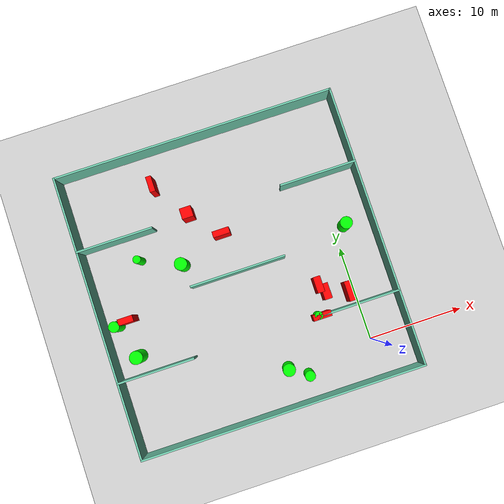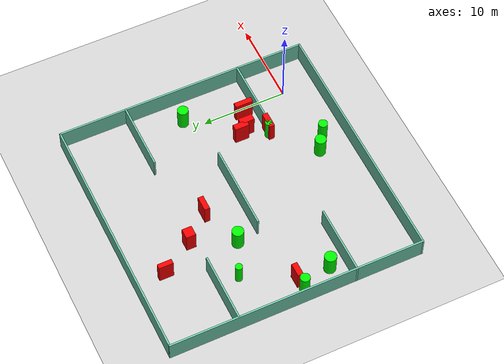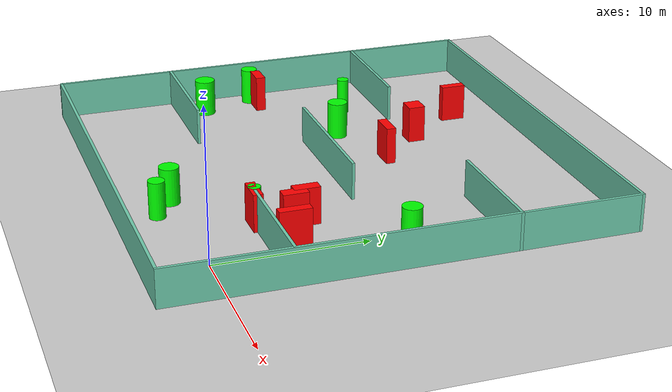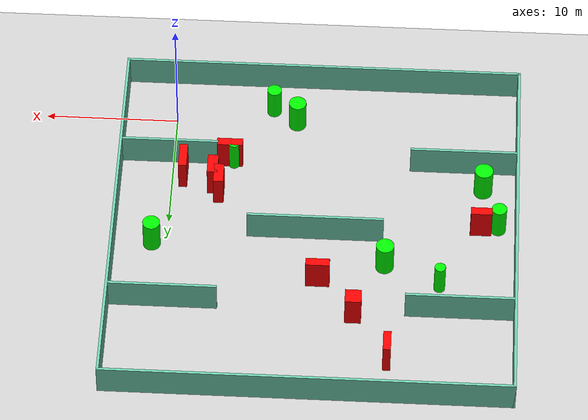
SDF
<sdf version="1.7">
 <world name="default">
  <light name="sun" type="directional">
   <pose>0 0 10 0 -0 0</pose>
   <diffuse>0.8 0.8 0.8 1</diffuse>
   <specular>0.2 0.2 0.2 1</specular>
   <attenuation>
    <range>1000</range>
    <constant>0.9</constant>
    <linear>0.01</linear>
    <quadratic>0.001</quadratic>
   </attenuation>
   <direction>-0.5 0.1 -0.9</direction>
   <spot><inner_angle>0</inner_angle><outer_angle>0</outer_angle><falloff>0</falloff></spot>
  </light>
  <model name="ground_plane">
   <static>1</static>
   <link name="link">
    <collision name="collision">
     <geometry><plane><normal>0 0 1</normal><size>100 100</size></plane></geometry>
     <surface>
      <contact><collide_bitmask>65535</collide_bitmask></contact>
      <friction><ode><mu>100</mu><mu2>50</mu2></ode></friction>
     </surface>
    </collision>
    <visual name="visual">
     <cast_shadows>0</cast_shadows>
     <geometry><plane><normal>0 0 1</normal><size>100 100</size></plane></geometry>
     <material>
      <script><uri>file://media/materials/scripts/gazebo.material</uri><name>Gazebo/Grey</name></script>
     </material>
    </visual>
   </link>
  </model>
  <gravity>0 0 -9.8</gravity>
  <magnetic_field>6e-06 2.3e-05 -4.2e-05</magnetic_field>
  <atmosphere type="adiabatic"/>
  <physics type="ode">
   <max_step_size>0.001</max_step_size>
   <real_time_factor>1</real_time_factor>
   <real_time_update_rate>1000</real_time_update_rate>
  </physics>
  <scene><ambient>0.4 0.4 0.4 1</ambient><background>0.7 0.7 0.7 1</background><shadows>1</shadows></scene>
  <spherical_coordinates>
   <surface_model>EARTH_WGS84</surface_model>
   <latitude_deg>0</latitude_deg>
   <longitude_deg>0</longitude_deg>
   <elevation>0</elevation>
   <heading_deg>0</heading_deg>
  </spherical_coordinates>
  <model name="my_base_walls">
   <link name="Wall_10">
    <collision name="Wall_10_Collision">
     <geometry><box><size>8.2 0.2 2.5</size></box></geometry>
     <pose>0 0 1.25 0 -0 0</pose>
    </collision>
    <visual name="Wall_10_Visual">
     <pose>0 0 1.25 0 -0 0</pose>
     <geometry><box><size>8.2 0.2 2.5</size></box></geometry>
     <material>
      <script><uri>file://media/materials/scripts/gazebo.material</uri><name>Gazebo/Grey</name></script>
      <ambient>0.435294 0.796078 0.67451 1</ambient>
     </material>
     <meta><layer>0</layer></meta>
    </visual>
    <pose>-11 -7 0 0 -0 0</pose>
   </link>
   <link name="Wall_12">
    <collision name="Wall_12_Collision">
     <geometry><box><size>8.2 0.2 2.5</size></box></geometry>
     <pose>0 0 1.25 0 -0 0</pose>
    </collision>
    <visual name="Wall_12_Visual">
     <pose>0 0 1.25 0 -0 0</pose>
     <geometry><box><size>8.2 0.2 2.5</size></box></geometry>
     <material>
      <script><uri>file://media/materials/scripts/gazebo.material</uri><name>Gazebo/Grey</name></script>
      <ambient>0.435294 0.796078 0.67451 1</ambient>
     </material>
     <meta><layer>0</layer></meta>
    </visual>
    <pose>-11 7 0 0 -0 0</pose>
   </link>
   <link name="Wall_14">
    <collision name="Wall_14_Collision">
     <geometry><box><size>8.2 0.2 2.5</size></box></geometry>
     <pose>0 0 1.25 0 -0 0</pose>
    </collision>
    <visual name="Wall_14_Visual">
     <pose>0 0 1.25 0 -0 0</pose>
     <geometry><box><size>8.2 0.2 2.5</size></box></geometry>
     <material>
      <script><uri>file://media/materials/scripts/gazebo.material</uri><name>Gazebo/Grey</name></script>
      <ambient>0.435294 0.796078 0.67451 1</ambient>
     </material>
     <meta><layer>0</layer></meta>
    </visual>
    <pose>11 7 0 0 -0 3.14159</pose>
   </link>
   <link name="Wall_16">
    <collision name="Wall_16_Collision">
     <geometry><box><size>10.2 0.2 2.5</size></box></geometry>
     <pose>0 0 1.25 0 -0 0</pose>
    </collision>
    <visual name="Wall_16_Visual">
     <pose>0 0 1.25 0 -0 0</pose>
     <geometry><box><size>10.2 0.2 2.5</size></box></geometry>
     <material>
      <script><uri>file://media/materials/scripts/gazebo.material</uri><name>Gazebo/Grey</name></script>
      <ambient>0.435294 0.796078 0.67451 1</ambient>
     </material>
     <meta><layer>0</layer></meta>
    </visual>
    <pose>0 0 0 0 -0 3.14159</pose>
   </link>
   <link name="Wall_2">
    <collision name="Wall_2_Collision">
     <geometry><box><size>30.2 0.2 2.5</size></box></geometry>
     <pose>0 0 1.25 0 -0 0</pose>
    </collision>
    <visual name="Wall_2_Visual">
     <pose>0 0 1.25 0 -0 0</pose>
     <geometry><box><size>30.2 0.2 2.5</size></box></geometry>
     <material>
      <script><uri>file://media/materials/scripts/gazebo.material</uri><name>Gazebo/Grey</name></script>
      <ambient>0.435294 0.796078 0.67451 1</ambient>
     </material>
     <meta><layer>0</layer></meta>
    </visual>
    <pose>0 -15 0 0 -0 3.14159</pose>
   </link>
   <link name="Wall_3">
    <collision name="Wall_3_Collision">
     <geometry><box><size>30.2 0.2 2.5</size></box></geometry>
     <pose>0 0 1.25 0 -0 0</pose>
    </collision>
    <visual name="Wall_3_Visual">
     <pose>0 0 1.25 0 -0 0</pose>
     <geometry><box><size>30.2 0.2 2.5</size></box></geometry>
     <material>
      <script><uri>file://media/materials/scripts/gazebo.material</uri><name>Gazebo/Grey</name></script>
      <ambient>0.435294 0.796078 0.67451 1</ambient>
     </material>
     <meta><layer>0</layer></meta>
    </visual>
    <pose>-15 0 0 0 -0 1.5708</pose>
   </link>
   <link name="Wall_4">
    <collision name="Wall_4_Collision">
     <geometry><box><size>30.2 0.2 2.5</size></box></geometry>
     <pose>0 0 1.25 0 -0 0</pose>
    </collision>
    <visual name="Wall_4_Visual">
     <pose>0 0 1.25 0 -0 0</pose>
     <geometry><box><size>30.2 0.2 2.5</size></box></geometry>
     <material>
      <script><uri>file://media/materials/scripts/gazebo.material</uri><name>Gazebo/Grey</name></script>
      <ambient>0.435294 0.796078 0.67451 1</ambient>
     </material>
     <meta><layer>0</layer></meta>
    </visual>
    <pose>0 15 0 0 -0 0</pose>
   </link>
   <link name="Wall_6">
    <collision name="Wall_6_Collision">
     <geometry><box><size>30.2 0.2 2.5</size></box></geometry>
     <pose>0 0 1.25 0 -0 0</pose>
    </collision>
    <visual name="Wall_6_Visual">
     <pose>0 0 1.25 0 -0 0</pose>
     <geometry><box><size>30.2 0.2 2.5</size></box></geometry>
     <material>
      <script><uri>file://media/materials/scripts/gazebo.material</uri><name>Gazebo/Grey</name></script>
      <ambient>0.435294 0.796078 0.67451 1</ambient>
     </material>
     <meta><layer>0</layer></meta>
    </visual>
    <pose>15 0 0 0 -0 1.5708</pose>
   </link>
   <link name="Wall_8">
    <collision name="Wall_8_Collision">
     <geometry><box><size>8.2 0.2 2.5</size></box></geometry>
     <pose>0 0 1.25 0 -0 0</pose>
    </collision>
    <visual name="Wall_8_Visual">
     <pose>0 0 1.25 0 -0 0</pose>
     <geometry><box><size>8.2 0.2 2.5</size></box></geometry>
     <material>
      <script><uri>file://media/materials/scripts/gazebo.material</uri><name>Gazebo/Grey</name></script>
      <ambient>0.435294 0.796078 0.67451 1</ambient>
     </material>
     <meta><layer>0</layer></meta>
    </visual>
    <pose>11 -7 0 0 -0 3.14159</pose>
   </link>
   <static>1</static>
   <pose>-11 11 0 0 -0 0</pose>
  </model>
  <model name="cylinder1">
   <static>1</static>
   <link name="link">
    <inertial>
     <mass>1</mass>
     <inertia><ixx>0.5</ixx><ixy>0</ixy><ixz>0</ixz><iyy>0.5</iyy><iyz>0</iyz><izz>1</izz></inertia>
    </inertial>
    <collision name="collision">
     <geometry><cylinder><radius>0.6709360063546824</radius><length>2.5</length></cylinder></geometry>
    </collision>
    <visual name="visual">
     <geometry><cylinder><radius>0.6709360063546824</radius><length>2.5</length></cylinder></geometry>
     <material>
      <ambient>0 1 0 1</ambient>
      <diffuse>0 1 0 1</diffuse>
      <specular>0.1 0.1 0.1 1</specular>
      <emissive>0 0 0 0</emissive>
     </material>
    </visual>
   </link>
   <pose>-16.285131129663245 13.529910714254367 1.25 0 0 0</pose>
  </model>
  <model name="cylinder2">
   <static>1</static>
   <link name="link">
    <inertial>
     <mass>1</mass>
     <inertia><ixx>0.5</ixx><ixy>0</ixy><ixz>0</ixz><iyy>0.5</iyy><iyz>0</iyz><izz>1</izz></inertia>
    </inertial>
    <collision name="collision">
     <geometry><cylinder><radius>0.41169627167094264</radius><length>2.5</length></cylinder></geometry>
    </collision>
    <visual name="visual">
     <geometry><cylinder><radius>0.41169627167094264</radius><length>2.5</length></cylinder></geometry>
     <material>
      <ambient>0 1 0 1</ambient>
      <diffuse>0 1 0 1</diffuse>
      <specular>0.1 0.1 0.1 1</specular>
      <emissive>0 0 0 0</emissive>
     </material>
    </visual>
   </link>
   <pose>-20.39602824834769 15.361133922305335 1.25 0 0 0</pose>
  </model>
  <model name="cylinder3">
   <static>1</static>
   <link name="link">
    <inertial>
     <mass>1</mass>
     <inertia><ixx>0.5</ixx><ixy>0</ixy><ixz>0</ixz><iyy>0.5</iyy><iyz>0</iyz><izz>1</izz></inertia>
    </inertial>
    <collision name="collision">
     <geometry><cylinder><radius>0.5638176457639393</radius><length>2.5</length></cylinder></geometry>
    </collision>
    <visual name="visual">
     <geometry><cylinder><radius>0.5638176457639393</radius><length>2.5</length></cylinder></geometry>
     <material>
      <ambient>0 1 0 1</ambient>
      <diffuse>0 1 0 1</diffuse>
      <specular>0.1 0.1 0.1 1</specular>
      <emissive>0 0 0 0</emissive>
     </material>
    </visual>
   </link>
   <pose>-24.65874496093165 9.554698504650768 1.25 0 0 0</pose>
  </model>
  <model name="cylinder4">
   <static>1</static>
   <link name="link">
    <inertial>
     <mass>1</mass>
     <inertia><ixx>0.5</ixx><ixy>0</ixy><ixz>0</ixz><iyy>0.5</iyy><iyz>0</iyz><izz>1</izz></inertia>
    </inertial>
    <collision name="collision">
     <geometry><cylinder><radius>0.4199806822687194</radius><length>2.5</length></cylinder></geometry>
    </collision>
    <visual name="visual">
     <geometry><cylinder><radius>0.4199806822687194</radius><length>2.5</length></cylinder></geometry>
     <material>
      <ambient>0 1 0 1</ambient>
      <diffuse>0 1 0 1</diffuse>
      <specular>0.1 0.1 0.1 1</specular>
      <emissive>0 0 0 0</emissive>
     </material>
    </visual>
   </link>
   <pose>-4.579825431128409 4.101448295903825 1.25 0 0 0</pose>
  </model>
  <model name="cylinder5">
   <static>1</static>
   <link name="link">
    <inertial>
     <mass>1</mass>
     <inertia><ixx>0.5</ixx><ixy>0</ixy><ixz>0</ixz><iyy>0.5</iyy><iyz>0</iyz><izz>1</izz></inertia>
    </inertial>
    <collision name="collision">
     <geometry><cylinder><radius>0.6912452159470157</radius><length>2.5</length></cylinder></geometry>
    </collision>
    <visual name="visual">
     <geometry><cylinder><radius>0.6912452159470157</radius><length>2.5</length></cylinder></geometry>
     <material>
      <ambient>0 1 0 1</ambient>
      <diffuse>0 1 0 1</diffuse>
      <specular>0.1 0.1 0.1 1</specular>
      <emissive>0 0 0 0</emissive>
     </material>
    </visual>
   </link>
   <pose>-23.462056322494572 5.904785090985891 1.25 0 0 0</pose>
  </model>
  <model name="cylinder6">
   <static>1</static>
   <link name="link">
    <inertial>
     <mass>1</mass>
     <inertia><ixx>0.5</ixx><ixy>0</ixy><ixz>0</ixz><iyy>0.5</iyy><iyz>0</iyz><izz>1</izz></inertia>
    </inertial>
    <collision name="collision">
     <geometry><cylinder><radius>0.5393462970898172</radius><length>2.5</length></cylinder></geometry>
    </collision>
    <visual name="visual">
     <geometry><cylinder><radius>0.5393462970898172</radius><length>2.5</length></cylinder></geometry>
     <material>
      <ambient>0 1 0 1</ambient>
      <diffuse>0 1 0 1</diffuse>
      <specular>0.1 0.1 0.1 1</specular>
      <emissive>0 0 0 0</emissive>
     </material>
    </visual>
   </link>
   <pose>-7.352197317806626 -1.3694824432864148 1.25 0 0 0</pose>
  </model>
  <model name="cylinder7">
   <static>1</static>
   <link name="link">
    <inertial>
     <mass>1</mass>
     <inertia><ixx>0.5</ixx><ixy>0</ixy><ixz>0</ixz><iyy>0.5</iyy><iyz>0</iyz><izz>1</izz></inertia>
    </inertial>
    <collision name="collision">
     <geometry><cylinder><radius>0.6481910516386734</radius><length>2.5</length></cylinder></geometry>
    </collision>
    <visual name="visual">
     <geometry><cylinder><radius>0.6481910516386734</radius><length>2.5</length></cylinder></geometry>
     <material>
      <ambient>0 1 0 1</ambient>
      <diffuse>0 1 0 1</diffuse>
      <specular>0.1 0.1 0.1 1</specular>
      <emissive>0 0 0 0</emissive>
     </material>
    </visual>
   </link>
   <pose>1.1142421438336498 12.196042112179274 1.25 0 0 0</pose>
  </model>
  <model name="cylinder8">
   <static>1</static>
   <link name="link">
    <inertial>
     <mass>1</mass>
     <inertia><ixx>0.5</ixx><ixy>0</ixy><ixz>0</ixz><iyy>0.5</iyy><iyz>0</iyz><izz>1</izz></inertia>
    </inertial>
    <collision name="collision">
     <geometry><cylinder><radius>0.6569125587899286</radius><length>2.5</length></cylinder></geometry>
    </collision>
    <visual name="visual">
     <geometry><cylinder><radius>0.6569125587899286</radius><length>2.5</length></cylinder></geometry>
     <material>
      <ambient>0 1 0 1</ambient>
      <diffuse>0 1 0 1</diffuse>
      <specular>0.1 0.1 0.1 1</specular>
      <emissive>0 0 0 0</emissive>
     </material>
    </visual>
   </link>
   <pose>-9.183081160626829 -0.1428998856432817 1.25 0 0 0</pose>
  </model>
  <model name="box1">
   <static>1</static>
   <link name="link">
    <inertial>
     <mass>1</mass>
     <inertia><ixx>0.083</ixx><ixy>0</ixy><ixz>0</ixz><iyy>0.083</iyy><iyz>0</iyz><izz>0.083</izz></inertia>
    </inertial>
    <collision name="collision">
     <geometry><box><size>0.5772716595763056 1.6741150637588744 2.5</size></box></geometry>
    </collision>
    <visual name="visual">
     <geometry><box><size>0.5772716595763056 1.6741150637588744 2.5</size></box></geometry>
     <material>
      <ambient>1 0 0 1</ambient>
      <diffuse>1 0 0 1</diffuse>
      <specular>0.1 0.1 0.1 1</specular>
      <emissive>0 0 0 0</emissive>
     </material>
    </visual>
    <sensor name="my_contact" type="contact">
     <contact><collision>box_collision</collision><topic>__default_topic__</topic></contact>
    </sensor>
   </link>
   <pose>-16.713658109654254 22.34866200785696 1.25 0 0 0</pose>
  </model>
  <model name="box2">
   <static>1</static>
   <link name="link">
    <inertial>
     <mass>1</mass>
     <inertia><ixx>0.083</ixx><ixy>0</ixy><ixz>0</ixz><iyy>0.083</iyy><iyz>0</iyz><izz>0.083</izz></inertia>
    </inertial>
    <collision name="collision">
     <geometry><box><size>1.9375344776129686 0.6404292818144962 2.5</size></box></geometry>
    </collision>
    <visual name="visual">
     <geometry><box><size>1.9375344776129686 0.6404292818144962 2.5</size></box></geometry>
     <material>
      <ambient>1 0 0 1</ambient>
      <diffuse>1 0 0 1</diffuse>
      <specular>0.1 0.1 0.1 1</specular>
      <emissive>0 0 0 0</emissive>
     </material>
    </visual>
    <sensor name="my_contact" type="contact">
     <contact><collision>box_collision</collision><topic>__default_topic__</topic></contact>
    </sensor>
   </link>
   <pose>-4.259490819740494 3.988509212732179 1.25 0 0 0</pose>
  </model>
  <model name="box3">
   <static>1</static>
   <link name="link">
    <inertial>
     <mass>1</mass>
     <inertia><ixx>0.083</ixx><ixy>0</ixy><ixz>0</ixz><iyy>0.083</iyy><iyz>0</iyz><izz>0.083</izz></inertia>
    </inertial>
    <collision name="collision">
     <geometry><box><size>1.5845869750227302 0.6568283937534828 2.5</size></box></geometry>
    </collision>
    <visual name="visual">
     <geometry><box><size>1.5845869750227302 0.6568283937534828 2.5</size></box></geometry>
     <material>
      <ambient>1 0 0 1</ambient>
      <diffuse>1 0 0 1</diffuse>
      <specular>0.1 0.1 0.1 1</specular>
      <emissive>0 0 0 0</emissive>
     </material>
    </visual>
    <sensor name="my_contact" type="contact">
     <contact><collision>box_collision</collision><topic>__default_topic__</topic></contact>
    </sensor>
   </link>
   <pose>-23.35372902073414 9.834151355371429 1.25 0 0 0</pose>
  </model>
  <model name="box4">
   <static>1</static>
   <link name="link">
    <inertial>
     <mass>1</mass>
     <inertia><ixx>0.083</ixx><ixy>0</ixy><ixz>0</ixz><iyy>0.083</iyy><iyz>0</iyz><izz>0.083</izz></inertia>
    </inertial>
    <collision name="collision">
     <geometry><box><size>0.6212339829916351 2.0918594160683304 2.5</size></box></geometry>
    </collision>
    <visual name="visual">
     <geometry><box><size>0.6212339829916351 2.0918594160683304 2.5</size></box></geometry>
     <material>
      <ambient>1 0 0 1</ambient>
      <diffuse>1 0 0 1</diffuse>
      <specular>0.1 0.1 0.1 1</specular>
      <emissive>0 0 0 0</emissive>
     </material>
    </visual>
    <sensor name="my_contact" type="contact">
     <contact><collision>box_collision</collision><topic>__default_topic__</topic></contact>
    </sensor>
   </link>
   <pose>-0.8095625581513062 5.485163647411088 1.25 0 0 0</pose>
  </model>
  <model name="box5">
   <static>1</static>
   <link name="link">
    <inertial>
     <mass>1</mass>
     <inertia><ixx>0.083</ixx><ixy>0</ixy><ixz>0</ixz><iyy>0.083</iyy><iyz>0</iyz><izz>0.083</izz></inertia>
    </inertial>
    <collision name="collision">
     <geometry><box><size>0.750307018928807 1.6997843859538824 2.5</size></box></geometry>
    </collision>
    <visual name="visual">
     <geometry><box><size>0.750307018928807 1.6997843859538824 2.5</size></box></geometry>
     <material>
      <ambient>1 0 0 1</ambient>
      <diffuse>1 0 0 1</diffuse>
      <specular>0.1 0.1 0.1 1</specular>
      <emissive>0 0 0 0</emissive>
     </material>
    </visual>
    <sensor name="my_contact" type="contact">
     <contact><collision>box_collision</collision><topic>__default_topic__</topic></contact>
    </sensor>
   </link>
   <pose>-3.5900024707980656 7.0935565066870385 1.25 0 0 0</pose>
  </model>
  <model name="box6">
   <static>1</static>
   <link name="link">
    <inertial>
     <mass>1</mass>
     <inertia><ixx>0.083</ixx><ixy>0</ixy><ixz>0</ixz><iyy>0.083</iyy><iyz>0</iyz><izz>0.083</izz></inertia>
    </inertial>
    <collision name="collision">
     <geometry><box><size>1.7858912201018262 0.6413365298863867 2.5</size></box></geometry>
    </collision>
    <visual name="visual">
     <geometry><box><size>1.7858912201018262 0.6413365298863867 2.5</size></box></geometry>
     <material>
      <ambient>1 0 0 1</ambient>
      <diffuse>1 0 0 1</diffuse>
      <specular>0.1 0.1 0.1 1</specular>
      <emissive>0 0 0 0</emissive>
     </material>
    </visual>
    <sensor name="my_contact" type="contact">
     <contact><collision>box_collision</collision><topic>__default_topic__</topic></contact>
    </sensor>
   </link>
   <pose>-11.377824997012803 15.322378965688696 1.25 0 0 0</pose>
  </model>
  <model name="box7">
   <static>1</static>
   <link name="link">
    <inertial>
     <mass>1</mass>
     <inertia><ixx>0.083</ixx><ixy>0</ixy><ixz>0</ixz><iyy>0.083</iyy><iyz>0</iyz><izz>0.083</izz></inertia>
    </inertial>
    <collision name="collision">
     <geometry><box><size>0.794386323717635 1.672605081005575 2.5</size></box></geometry>
    </collision>
    <visual name="visual">
     <geometry><box><size>0.794386323717635 1.672605081005575 2.5</size></box></geometry>
     <material>
      <ambient>1 0 0 1</ambient>
      <diffuse>1 0 0 1</diffuse>
      <specular>0.1 0.1 0.1 1</specular>
      <emissive>0 0 0 0</emissive>
     </material>
    </visual>
    <sensor name="my_contact" type="contact">
     <contact><collision>box_collision</collision><topic>__default_topic__</topic></contact>
    </sensor>
   </link>
   <pose>-3.093853639858292 6.210805857940201 1.25 0 0 0</pose>
  </model>
  <model name="box8">
   <static>1</static>
   <link name="link">
    <inertial>
     <mass>1</mass>
     <inertia><ixx>0.083</ixx><ixy>0</ixy><ixz>0</ixz><iyy>0.083</iyy><iyz>0</iyz><izz>0.083</izz></inertia>
    </inertial>
    <collision name="collision">
     <geometry><box><size>1.2146944557915362 1.1445424754650118 2.5</size></box></geometry>
    </collision>
    <visual name="visual">
     <geometry><box><size>1.2146944557915362 1.1445424754650118 2.5</size></box></geometry>
     <material>
      <ambient>1 0 0 1</ambient>
      <diffuse>1 0 0 1</diffuse>
      <specular>0.1 0.1 0.1 1</specular>
      <emissive>0 0 0 0</emissive>
     </material>
    </visual>
    <sensor name="my_contact" type="contact">
     <contact><collision>box_collision</collision><topic>__default_topic__</topic></contact>
    </sensor>
   </link>
   <pose>-14.11462497887977 18.376501012626925 1.25 0 0 0</pose>
  </model>
 </world>
</sdf>
